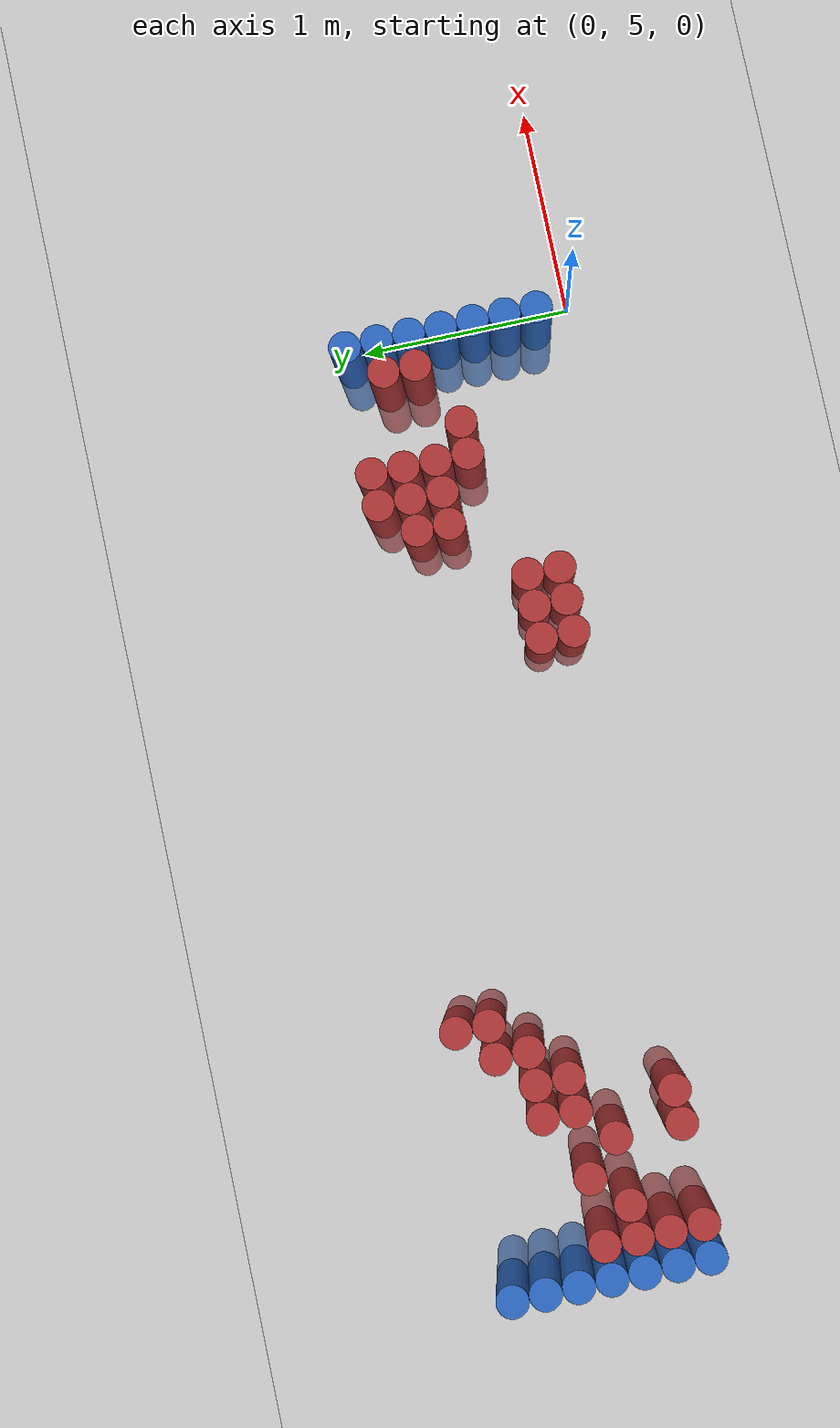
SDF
<sdf version="1.6">
 <world name="default">
  <model name="ground_plane">
   <static>1</static>
   <link name="link">
    <collision name="collision">
     <geometry><plane><normal>0 0 1</normal><size>100 100</size></plane></geometry>
     <surface><friction><ode><mu>100</mu><mu2>50</mu2></ode></friction></surface>
    </collision>
    <visual name="visual">
     <cast_shadows>0</cast_shadows>
     <geometry><plane><normal>0 0 1</normal><size>100 100</size></plane></geometry>
     <material>
      <script><uri>file://media/materials/scripts/gazebo.material</uri><name>Gazebo/Grey</name></script>
     </material>
    </visual>
   </link>
  </model>
  <model name="unit_cylinder_97">
   <static>1</static>
   <pose>-4.425000 5.325000 0.000000 0.000000 0.000000 0.000000</pose>
   <link name="link">
    <inertial>
     <mass>1</mass>
     <inertia><ixx>0.145833</ixx><ixy>0</ixy><ixz>0</ixz><iyy>0.145833</iyy><iyz>0</iyz><izz>0.125</izz></inertia>
    </inertial>
    <collision name="collision">
     <geometry><cylinder><radius>0.075000</radius><length>1</length></cylinder></geometry>
    </collision>
    <visual name="visual">
     <geometry><cylinder><radius>0.075000</radius><length>1</length></cylinder></geometry>
     <material>
      <ambient>0.152000 0.379000 0.720000 1</ambient>
      <diffuse>0.152000 0.379000 0.720000 1</diffuse>
     </material>
     <material>
      <script><name>Gazebo/Grey</name><uri>file://media/materials/scripts/gazebo.material</uri></script>
     </material>
    </visual>
   </link>
  </model>
  <model name="unit_cylinder_98">
   <static>1</static>
   <pose>-4.425000 5.475000 0.000000 0.000000 0.000000 0.000000</pose>
   <link name="link">
    <inertial>
     <mass>1</mass>
     <inertia><ixx>0.145833</ixx><ixy>0</ixy><ixz>0</ixz><iyy>0.145833</iyy><iyz>0</iyz><izz>0.125</izz></inertia>
    </inertial>
    <collision name="collision">
     <geometry><cylinder><radius>0.075000</radius><length>1</length></cylinder></geometry>
    </collision>
    <visual name="visual">
     <geometry><cylinder><radius>0.075000</radius><length>1</length></cylinder></geometry>
     <material>
      <ambient>0.152000 0.379000 0.720000 1</ambient>
      <diffuse>0.152000 0.379000 0.720000 1</diffuse>
     </material>
     <material>
      <script><name>Gazebo/Grey</name><uri>file://media/materials/scripts/gazebo.material</uri></script>
     </material>
    </visual>
   </link>
  </model>
  <model name="unit_cylinder_99">
   <static>1</static>
   <pose>-4.425000 5.625000 0.000000 0.000000 0.000000 0.000000</pose>
   <link name="link">
    <inertial>
     <mass>1</mass>
     <inertia><ixx>0.145833</ixx><ixy>0</ixy><ixz>0</ixz><iyy>0.145833</iyy><iyz>0</iyz><izz>0.125</izz></inertia>
    </inertial>
    <collision name="collision">
     <geometry><cylinder><radius>0.075000</radius><length>1</length></cylinder></geometry>
    </collision>
    <visual name="visual">
     <geometry><cylinder><radius>0.075000</radius><length>1</length></cylinder></geometry>
     <material>
      <ambient>0.152000 0.379000 0.720000 1</ambient>
      <diffuse>0.152000 0.379000 0.720000 1</diffuse>
     </material>
     <material>
      <script><name>Gazebo/Grey</name><uri>file://media/materials/scripts/gazebo.material</uri></script>
     </material>
    </visual>
   </link>
  </model>
  <model name="unit_cylinder_100">
   <static>1</static>
   <pose>-4.425000 5.775000 0.000000 0.000000 0.000000 0.000000</pose>
   <link name="link">
    <inertial>
     <mass>1</mass>
     <inertia><ixx>0.145833</ixx><ixy>0</ixy><ixz>0</ixz><iyy>0.145833</iyy><iyz>0</iyz><izz>0.125</izz></inertia>
    </inertial>
    <collision name="collision">
     <geometry><cylinder><radius>0.075000</radius><length>1</length></cylinder></geometry>
    </collision>
    <visual name="visual">
     <geometry><cylinder><radius>0.075000</radius><length>1</length></cylinder></geometry>
     <material>
      <ambient>0.152000 0.379000 0.720000 1</ambient>
      <diffuse>0.152000 0.379000 0.720000 1</diffuse>
     </material>
     <material>
      <script><name>Gazebo/Grey</name><uri>file://media/materials/scripts/gazebo.material</uri></script>
     </material>
    </visual>
   </link>
  </model>
  <model name="unit_cylinder_101">
   <static>1</static>
   <pose>-4.425000 5.925000 0.000000 0.000000 0.000000 0.000000</pose>
   <link name="link">
    <inertial>
     <mass>1</mass>
     <inertia><ixx>0.145833</ixx><ixy>0</ixy><ixz>0</ixz><iyy>0.145833</iyy><iyz>0</iyz><izz>0.125</izz></inertia>
    </inertial>
    <collision name="collision">
     <geometry><cylinder><radius>0.075000</radius><length>1</length></cylinder></geometry>
    </collision>
    <visual name="visual">
     <geometry><cylinder><radius>0.075000</radius><length>1</length></cylinder></geometry>
     <material>
      <ambient>0.152000 0.379000 0.720000 1</ambient>
      <diffuse>0.152000 0.379000 0.720000 1</diffuse>
     </material>
     <material>
      <script><name>Gazebo/Grey</name><uri>file://media/materials/scripts/gazebo.material</uri></script>
     </material>
    </visual>
   </link>
  </model>
  <model name="unit_cylinder_102">
   <static>1</static>
   <pose>-4.425000 6.075000 0.000000 0.000000 0.000000 0.000000</pose>
   <link name="link">
    <inertial>
     <mass>1</mass>
     <inertia><ixx>0.145833</ixx><ixy>0</ixy><ixz>0</ixz><iyy>0.145833</iyy><iyz>0</iyz><izz>0.125</izz></inertia>
    </inertial>
    <collision name="collision">
     <geometry><cylinder><radius>0.075000</radius><length>1</length></cylinder></geometry>
    </collision>
    <visual name="visual">
     <geometry><cylinder><radius>0.075000</radius><length>1</length></cylinder></geometry>
     <material>
      <ambient>0.152000 0.379000 0.720000 1</ambient>
      <diffuse>0.152000 0.379000 0.720000 1</diffuse>
     </material>
     <material>
      <script><name>Gazebo/Grey</name><uri>file://media/materials/scripts/gazebo.material</uri></script>
     </material>
    </visual>
   </link>
  </model>
  <model name="unit_cylinder_103">
   <static>1</static>
   <pose>-4.425000 6.225000 0.000000 0.000000 0.000000 0.000000</pose>
   <link name="link">
    <inertial>
     <mass>1</mass>
     <inertia><ixx>0.145833</ixx><ixy>0</ixy><ixz>0</ixz><iyy>0.145833</iyy><iyz>0</iyz><izz>0.125</izz></inertia>
    </inertial>
    <collision name="collision">
     <geometry><cylinder><radius>0.075000</radius><length>1</length></cylinder></geometry>
    </collision>
    <visual name="visual">
     <geometry><cylinder><radius>0.075000</radius><length>1</length></cylinder></geometry>
     <material>
      <ambient>0.152000 0.379000 0.720000 1</ambient>
      <diffuse>0.152000 0.379000 0.720000 1</diffuse>
     </material>
     <material>
      <script><name>Gazebo/Grey</name><uri>file://media/materials/scripts/gazebo.material</uri></script>
     </material>
    </visual>
   </link>
  </model>
  <model name="unit_cylinder_126">
   <static>1</static>
   <pose>-4.275000 5.325000 0.000000 0.000000 0.000000 0.000000</pose>
   <link name="link">
    <inertial>
     <mass>1</mass>
     <inertia><ixx>0.145833</ixx><ixy>0</ixy><ixz>0</ixz><iyy>0.145833</iyy><iyz>0</iyz><izz>0.125</izz></inertia>
    </inertial>
    <collision name="collision">
     <geometry><cylinder><radius>0.075000</radius><length>1</length></cylinder></geometry>
    </collision>
    <visual name="visual">
     <geometry><cylinder><radius>0.075000</radius><length>1</length></cylinder></geometry>
     <material>
      <ambient>0.648000 0.192000 0.192000 1</ambient>
      <diffuse>0.648000 0.192000 0.192000 1</diffuse>
     </material>
     <material>
      <script><name>Gazebo/Grey</name><uri>file://media/materials/scripts/gazebo.material</uri></script>
     </material>
    </visual>
   </link>
  </model>
  <model name="unit_cylinder_127">
   <static>1</static>
   <pose>-4.275000 5.475000 0.000000 0.000000 0.000000 0.000000</pose>
   <link name="link">
    <inertial>
     <mass>1</mass>
     <inertia><ixx>0.145833</ixx><ixy>0</ixy><ixz>0</ixz><iyy>0.145833</iyy><iyz>0</iyz><izz>0.125</izz></inertia>
    </inertial>
    <collision name="collision">
     <geometry><cylinder><radius>0.075000</radius><length>1</length></cylinder></geometry>
    </collision>
    <visual name="visual">
     <geometry><cylinder><radius>0.075000</radius><length>1</length></cylinder></geometry>
     <material>
      <ambient>0.648000 0.192000 0.192000 1</ambient>
      <diffuse>0.648000 0.192000 0.192000 1</diffuse>
     </material>
     <material>
      <script><name>Gazebo/Grey</name><uri>file://media/materials/scripts/gazebo.material</uri></script>
     </material>
    </visual>
   </link>
  </model>
  <model name="unit_cylinder_128">
   <static>1</static>
   <pose>-4.275000 5.625000 0.000000 0.000000 0.000000 0.000000</pose>
   <link name="link">
    <inertial>
     <mass>1</mass>
     <inertia><ixx>0.145833</ixx><ixy>0</ixy><ixz>0</ixz><iyy>0.145833</iyy><iyz>0</iyz><izz>0.125</izz></inertia>
    </inertial>
    <collision name="collision">
     <geometry><cylinder><radius>0.075000</radius><length>1</length></cylinder></geometry>
    </collision>
    <visual name="visual">
     <geometry><cylinder><radius>0.075000</radius><length>1</length></cylinder></geometry>
     <material>
      <ambient>0.648000 0.192000 0.192000 1</ambient>
      <diffuse>0.648000 0.192000 0.192000 1</diffuse>
     </material>
     <material>
      <script><name>Gazebo/Grey</name><uri>file://media/materials/scripts/gazebo.material</uri></script>
     </material>
    </visual>
   </link>
  </model>
  <model name="unit_cylinder_129">
   <static>1</static>
   <pose>-4.275000 5.775000 0.000000 0.000000 0.000000 0.000000</pose>
   <link name="link">
    <inertial>
     <mass>1</mass>
     <inertia><ixx>0.145833</ixx><ixy>0</ixy><ixz>0</ixz><iyy>0.145833</iyy><iyz>0</iyz><izz>0.125</izz></inertia>
    </inertial>
    <collision name="collision">
     <geometry><cylinder><radius>0.075000</radius><length>1</length></cylinder></geometry>
    </collision>
    <visual name="visual">
     <geometry><cylinder><radius>0.075000</radius><length>1</length></cylinder></geometry>
     <material>
      <ambient>0.648000 0.192000 0.192000 1</ambient>
      <diffuse>0.648000 0.192000 0.192000 1</diffuse>
     </material>
     <material>
      <script><name>Gazebo/Grey</name><uri>file://media/materials/scripts/gazebo.material</uri></script>
     </material>
    </visual>
   </link>
  </model>
  <model name="unit_cylinder_138">
   <static>1</static>
   <pose>-4.125000 5.625000 0.000000 0.000000 0.000000 0.000000</pose>
   <link name="link">
    <inertial>
     <mass>1</mass>
     <inertia><ixx>0.145833</ixx><ixy>0</ixy><ixz>0</ixz><iyy>0.145833</iyy><iyz>0</iyz><izz>0.125</izz></inertia>
    </inertial>
    <collision name="collision">
     <geometry><cylinder><radius>0.075000</radius><length>1</length></cylinder></geometry>
    </collision>
    <visual name="visual">
     <geometry><cylinder><radius>0.075000</radius><length>1</length></cylinder></geometry>
     <material>
      <ambient>0.648000 0.192000 0.192000 1</ambient>
      <diffuse>0.648000 0.192000 0.192000 1</diffuse>
     </material>
     <material>
      <script><name>Gazebo/Grey</name><uri>file://media/materials/scripts/gazebo.material</uri></script>
     </material>
    </visual>
   </link>
  </model>
  <model name="unit_cylinder_150">
   <static>1</static>
   <pose>-3.975000 5.775000 0.000000 0.000000 0.000000 0.000000</pose>
   <link name="link">
    <inertial>
     <mass>1</mass>
     <inertia><ixx>0.145833</ixx><ixy>0</ixy><ixz>0</ixz><iyy>0.145833</iyy><iyz>0</iyz><izz>0.125</izz></inertia>
    </inertial>
    <collision name="collision">
     <geometry><cylinder><radius>0.075000</radius><length>1</length></cylinder></geometry>
    </collision>
    <visual name="visual">
     <geometry><cylinder><radius>0.075000</radius><length>1</length></cylinder></geometry>
     <material>
      <ambient>0.648000 0.192000 0.192000 1</ambient>
      <diffuse>0.648000 0.192000 0.192000 1</diffuse>
     </material>
     <material>
      <script><name>Gazebo/Grey</name><uri>file://media/materials/scripts/gazebo.material</uri></script>
     </material>
    </visual>
   </link>
  </model>
  <model name="unit_cylinder_164">
   <static>1</static>
   <pose>-3.825000 5.325000 0.000000 0.000000 0.000000 0.000000</pose>
   <link name="link">
    <inertial>
     <mass>1</mass>
     <inertia><ixx>0.145833</ixx><ixy>0</ixy><ixz>0</ixz><iyy>0.145833</iyy><iyz>0</iyz><izz>0.125</izz></inertia>
    </inertial>
    <collision name="collision">
     <geometry><cylinder><radius>0.075000</radius><length>1</length></cylinder></geometry>
    </collision>
    <visual name="visual">
     <geometry><cylinder><radius>0.075000</radius><length>1</length></cylinder></geometry>
     <material>
      <ambient>0.648000 0.192000 0.192000 1</ambient>
      <diffuse>0.648000 0.192000 0.192000 1</diffuse>
     </material>
     <material>
      <script><name>Gazebo/Grey</name><uri>file://media/materials/scripts/gazebo.material</uri></script>
     </material>
    </visual>
   </link>
  </model>
  <model name="unit_cylinder_165">
   <static>1</static>
   <pose>-3.825000 5.625000 0.000000 0.000000 0.000000 0.000000</pose>
   <link name="link">
    <inertial>
     <mass>1</mass>
     <inertia><ixx>0.145833</ixx><ixy>0</ixy><ixz>0</ixz><iyy>0.145833</iyy><iyz>0</iyz><izz>0.125</izz></inertia>
    </inertial>
    <collision name="collision">
     <geometry><cylinder><radius>0.075000</radius><length>1</length></cylinder></geometry>
    </collision>
    <visual name="visual">
     <geometry><cylinder><radius>0.075000</radius><length>1</length></cylinder></geometry>
     <material>
      <ambient>0.648000 0.192000 0.192000 1</ambient>
      <diffuse>0.648000 0.192000 0.192000 1</diffuse>
     </material>
     <material>
      <script><name>Gazebo/Grey</name><uri>file://media/materials/scripts/gazebo.material</uri></script>
     </material>
    </visual>
   </link>
  </model>
  <model name="unit_cylinder_171">
   <static>1</static>
   <pose>-3.675000 5.325000 0.000000 0.000000 0.000000 0.000000</pose>
   <link name="link">
    <inertial>
     <mass>1</mass>
     <inertia><ixx>0.145833</ixx><ixy>0</ixy><ixz>0</ixz><iyy>0.145833</iyy><iyz>0</iyz><izz>0.125</izz></inertia>
    </inertial>
    <collision name="collision">
     <geometry><cylinder><radius>0.075000</radius><length>1</length></cylinder></geometry>
    </collision>
    <visual name="visual">
     <geometry><cylinder><radius>0.075000</radius><length>1</length></cylinder></geometry>
     <material>
      <ambient>0.648000 0.192000 0.192000 1</ambient>
      <diffuse>0.648000 0.192000 0.192000 1</diffuse>
     </material>
     <material>
      <script><name>Gazebo/Grey</name><uri>file://media/materials/scripts/gazebo.material</uri></script>
     </material>
    </visual>
   </link>
  </model>
  <model name="unit_cylinder_172">
   <static>1</static>
   <pose>-3.675000 5.775000 0.000000 0.000000 0.000000 0.000000</pose>
   <link name="link">
    <inertial>
     <mass>1</mass>
     <inertia><ixx>0.145833</ixx><ixy>0</ixy><ixz>0</ixz><iyy>0.145833</iyy><iyz>0</iyz><izz>0.125</izz></inertia>
    </inertial>
    <collision name="collision">
     <geometry><cylinder><radius>0.075000</radius><length>1</length></cylinder></geometry>
    </collision>
    <visual name="visual">
     <geometry><cylinder><radius>0.075000</radius><length>1</length></cylinder></geometry>
     <material>
      <ambient>0.648000 0.192000 0.192000 1</ambient>
      <diffuse>0.648000 0.192000 0.192000 1</diffuse>
     </material>
     <material>
      <script><name>Gazebo/Grey</name><uri>file://media/materials/scripts/gazebo.material</uri></script>
     </material>
    </visual>
   </link>
  </model>
  <model name="unit_cylinder_173">
   <static>1</static>
   <pose>-3.675000 5.925000 0.000000 0.000000 0.000000 0.000000</pose>
   <link name="link">
    <inertial>
     <mass>1</mass>
     <inertia><ixx>0.145833</ixx><ixy>0</ixy><ixz>0</ixz><iyy>0.145833</iyy><iyz>0</iyz><izz>0.125</izz></inertia>
    </inertial>
    <collision name="collision">
     <geometry><cylinder><radius>0.075000</radius><length>1</length></cylinder></geometry>
    </collision>
    <visual name="visual">
     <geometry><cylinder><radius>0.075000</radius><length>1</length></cylinder></geometry>
     <material>
      <ambient>0.648000 0.192000 0.192000 1</ambient>
      <diffuse>0.648000 0.192000 0.192000 1</diffuse>
     </material>
     <material>
      <script><name>Gazebo/Grey</name><uri>file://media/materials/scripts/gazebo.material</uri></script>
     </material>
    </visual>
   </link>
  </model>
  <model name="unit_cylinder_175">
   <static>1</static>
   <pose>-3.525000 5.775000 0.000000 0.000000 0.000000 0.000000</pose>
   <link name="link">
    <inertial>
     <mass>1</mass>
     <inertia><ixx>0.145833</ixx><ixy>0</ixy><ixz>0</ixz><iyy>0.145833</iyy><iyz>0</iyz><izz>0.125</izz></inertia>
    </inertial>
    <collision name="collision">
     <geometry><cylinder><radius>0.075000</radius><length>1</length></cylinder></geometry>
    </collision>
    <visual name="visual">
     <geometry><cylinder><radius>0.075000</radius><length>1</length></cylinder></geometry>
     <material>
      <ambient>0.648000 0.192000 0.192000 1</ambient>
      <diffuse>0.648000 0.192000 0.192000 1</diffuse>
     </material>
     <material>
      <script><name>Gazebo/Grey</name><uri>file://media/materials/scripts/gazebo.material</uri></script>
     </material>
    </visual>
   </link>
  </model>
  <model name="unit_cylinder_176">
   <static>1</static>
   <pose>-3.525000 5.925000 0.000000 0.000000 0.000000 0.000000</pose>
   <link name="link">
    <inertial>
     <mass>1</mass>
     <inertia><ixx>0.145833</ixx><ixy>0</ixy><ixz>0</ixz><iyy>0.145833</iyy><iyz>0</iyz><izz>0.125</izz></inertia>
    </inertial>
    <collision name="collision">
     <geometry><cylinder><radius>0.075000</radius><length>1</length></cylinder></geometry>
    </collision>
    <visual name="visual">
     <geometry><cylinder><radius>0.075000</radius><length>1</length></cylinder></geometry>
     <material>
      <ambient>0.648000 0.192000 0.192000 1</ambient>
      <diffuse>0.648000 0.192000 0.192000 1</diffuse>
     </material>
     <material>
      <script><name>Gazebo/Grey</name><uri>file://media/materials/scripts/gazebo.material</uri></script>
     </material>
    </visual>
   </link>
  </model>
  <model name="unit_cylinder_181">
   <static>1</static>
   <pose>-3.375000 5.925000 0.000000 0.000000 0.000000 0.000000</pose>
   <link name="link">
    <inertial>
     <mass>1</mass>
     <inertia><ixx>0.145833</ixx><ixy>0</ixy><ixz>0</ixz><iyy>0.145833</iyy><iyz>0</iyz><izz>0.125</izz></inertia>
    </inertial>
    <collision name="collision">
     <geometry><cylinder><radius>0.075000</radius><length>1</length></cylinder></geometry>
    </collision>
    <visual name="visual">
     <geometry><cylinder><radius>0.075000</radius><length>1</length></cylinder></geometry>
     <material>
      <ambient>0.648000 0.192000 0.192000 1</ambient>
      <diffuse>0.648000 0.192000 0.192000 1</diffuse>
     </material>
     <material>
      <script><name>Gazebo/Grey</name><uri>file://media/materials/scripts/gazebo.material</uri></script>
     </material>
    </visual>
   </link>
  </model>
  <model name="unit_cylinder_182">
   <static>1</static>
   <pose>-3.375000 6.075000 0.000000 0.000000 0.000000 0.000000</pose>
   <link name="link">
    <inertial>
     <mass>1</mass>
     <inertia><ixx>0.145833</ixx><ixy>0</ixy><ixz>0</ixz><iyy>0.145833</iyy><iyz>0</iyz><izz>0.125</izz></inertia>
    </inertial>
    <collision name="collision">
     <geometry><cylinder><radius>0.075000</radius><length>1</length></cylinder></geometry>
    </collision>
    <visual name="visual">
     <geometry><cylinder><radius>0.075000</radius><length>1</length></cylinder></geometry>
     <material>
      <ambient>0.648000 0.192000 0.192000 1</ambient>
      <diffuse>0.648000 0.192000 0.192000 1</diffuse>
     </material>
     <material>
      <script><name>Gazebo/Grey</name><uri>file://media/materials/scripts/gazebo.material</uri></script>
     </material>
    </visual>
   </link>
  </model>
  <model name="unit_cylinder_188">
   <static>1</static>
   <pose>-3.225000 6.075000 0.000000 0.000000 0.000000 0.000000</pose>
   <link name="link">
    <inertial>
     <mass>1</mass>
     <inertia><ixx>0.145833</ixx><ixy>0</ixy><ixz>0</ixz><iyy>0.145833</iyy><iyz>0</iyz><izz>0.125</izz></inertia>
    </inertial>
    <collision name="collision">
     <geometry><cylinder><radius>0.075000</radius><length>1</length></cylinder></geometry>
    </collision>
    <visual name="visual">
     <geometry><cylinder><radius>0.075000</radius><length>1</length></cylinder></geometry>
     <material>
      <ambient>0.648000 0.192000 0.192000 1</ambient>
      <diffuse>0.648000 0.192000 0.192000 1</diffuse>
     </material>
     <material>
      <script><name>Gazebo/Grey</name><uri>file://media/materials/scripts/gazebo.material</uri></script>
     </material>
    </visual>
   </link>
  </model>
  <model name="unit_cylinder_189">
   <static>1</static>
   <pose>-3.225000 6.225000 0.000000 0.000000 0.000000 0.000000</pose>
   <link name="link">
    <inertial>
     <mass>1</mass>
     <inertia><ixx>0.145833</ixx><ixy>0</ixy><ixz>0</ixz><iyy>0.145833</iyy><iyz>0</iyz><izz>0.125</izz></inertia>
    </inertial>
    <collision name="collision">
     <geometry><cylinder><radius>0.075000</radius><length>1</length></cylinder></geometry>
    </collision>
    <visual name="visual">
     <geometry><cylinder><radius>0.075000</radius><length>1</length></cylinder></geometry>
     <material>
      <ambient>0.648000 0.192000 0.192000 1</ambient>
      <diffuse>0.648000 0.192000 0.192000 1</diffuse>
     </material>
     <material>
      <script><name>Gazebo/Grey</name><uri>file://media/materials/scripts/gazebo.material</uri></script>
     </material>
    </visual>
   </link>
  </model>
  <model name="unit_cylinder_228">
   <static>1</static>
   <pose>-1.575000 5.325000 0.000000 0.000000 0.000000 0.000000</pose>
   <link name="link">
    <inertial>
     <mass>1</mass>
     <inertia><ixx>0.145833</ixx><ixy>0</ixy><ixz>0</ixz><iyy>0.145833</iyy><iyz>0</iyz><izz>0.125</izz></inertia>
    </inertial>
    <collision name="collision">
     <geometry><cylinder><radius>0.075000</radius><length>1</length></cylinder></geometry>
    </collision>
    <visual name="visual">
     <geometry><cylinder><radius>0.075000</radius><length>1</length></cylinder></geometry>
     <material>
      <ambient>0.648000 0.192000 0.192000 1</ambient>
      <diffuse>0.648000 0.192000 0.192000 1</diffuse>
     </material>
     <material>
      <script><name>Gazebo/Grey</name><uri>file://media/materials/scripts/gazebo.material</uri></script>
     </material>
    </visual>
   </link>
  </model>
  <model name="unit_cylinder_229">
   <static>1</static>
   <pose>-1.575000 5.475000 0.000000 0.000000 0.000000 0.000000</pose>
   <link name="link">
    <inertial>
     <mass>1</mass>
     <inertia><ixx>0.145833</ixx><ixy>0</ixy><ixz>0</ixz><iyy>0.145833</iyy><iyz>0</iyz><izz>0.125</izz></inertia>
    </inertial>
    <collision name="collision">
     <geometry><cylinder><radius>0.075000</radius><length>1</length></cylinder></geometry>
    </collision>
    <visual name="visual">
     <geometry><cylinder><radius>0.075000</radius><length>1</length></cylinder></geometry>
     <material>
      <ambient>0.648000 0.192000 0.192000 1</ambient>
      <diffuse>0.648000 0.192000 0.192000 1</diffuse>
     </material>
     <material>
      <script><name>Gazebo/Grey</name><uri>file://media/materials/scripts/gazebo.material</uri></script>
     </material>
    </visual>
   </link>
  </model>
  <model name="unit_cylinder_234">
   <static>1</static>
   <pose>-1.425000 5.325000 0.000000 0.000000 0.000000 0.000000</pose>
   <link name="link">
    <inertial>
     <mass>1</mass>
     <inertia><ixx>0.145833</ixx><ixy>0</ixy><ixz>0</ixz><iyy>0.145833</iyy><iyz>0</iyz><izz>0.125</izz></inertia>
    </inertial>
    <collision name="collision">
     <geometry><cylinder><radius>0.075000</radius><length>1</length></cylinder></geometry>
    </collision>
    <visual name="visual">
     <geometry><cylinder><radius>0.075000</radius><length>1</length></cylinder></geometry>
     <material>
      <ambient>0.648000 0.192000 0.192000 1</ambient>
      <diffuse>0.648000 0.192000 0.192000 1</diffuse>
     </material>
     <material>
      <script><name>Gazebo/Grey</name><uri>file://media/materials/scripts/gazebo.material</uri></script>
     </material>
    </visual>
   </link>
  </model>
  <model name="unit_cylinder_235">
   <static>1</static>
   <pose>-1.425000 5.475000 0.000000 0.000000 0.000000 0.000000</pose>
   <link name="link">
    <inertial>
     <mass>1</mass>
     <inertia><ixx>0.145833</ixx><ixy>0</ixy><ixz>0</ixz><iyy>0.145833</iyy><iyz>0</iyz><izz>0.125</izz></inertia>
    </inertial>
    <collision name="collision">
     <geometry><cylinder><radius>0.075000</radius><length>1</length></cylinder></geometry>
    </collision>
    <visual name="visual">
     <geometry><cylinder><radius>0.075000</radius><length>1</length></cylinder></geometry>
     <material>
      <ambient>0.648000 0.192000 0.192000 1</ambient>
      <diffuse>0.648000 0.192000 0.192000 1</diffuse>
     </material>
     <material>
      <script><name>Gazebo/Grey</name><uri>file://media/materials/scripts/gazebo.material</uri></script>
     </material>
    </visual>
   </link>
  </model>
  <model name="unit_cylinder_244">
   <static>1</static>
   <pose>-1.275000 5.325000 0.000000 0.000000 0.000000 0.000000</pose>
   <link name="link">
    <inertial>
     <mass>1</mass>
     <inertia><ixx>0.145833</ixx><ixy>0</ixy><ixz>0</ixz><iyy>0.145833</iyy><iyz>0</iyz><izz>0.125</izz></inertia>
    </inertial>
    <collision name="collision">
     <geometry><cylinder><radius>0.075000</radius><length>1</length></cylinder></geometry>
    </collision>
    <visual name="visual">
     <geometry><cylinder><radius>0.075000</radius><length>1</length></cylinder></geometry>
     <material>
      <ambient>0.648000 0.192000 0.192000 1</ambient>
      <diffuse>0.648000 0.192000 0.192000 1</diffuse>
     </material>
     <material>
      <script><name>Gazebo/Grey</name><uri>file://media/materials/scripts/gazebo.material</uri></script>
     </material>
    </visual>
   </link>
  </model>
  <model name="unit_cylinder_245">
   <static>1</static>
   <pose>-1.275000 5.475000 0.000000 0.000000 0.000000 0.000000</pose>
   <link name="link">
    <inertial>
     <mass>1</mass>
     <inertia><ixx>0.145833</ixx><ixy>0</ixy><ixz>0</ixz><iyy>0.145833</iyy><iyz>0</iyz><izz>0.125</izz></inertia>
    </inertial>
    <collision name="collision">
     <geometry><cylinder><radius>0.075000</radius><length>1</length></cylinder></geometry>
    </collision>
    <visual name="visual">
     <geometry><cylinder><radius>0.075000</radius><length>1</length></cylinder></geometry>
     <material>
      <ambient>0.648000 0.192000 0.192000 1</ambient>
      <diffuse>0.648000 0.192000 0.192000 1</diffuse>
     </material>
     <material>
      <script><name>Gazebo/Grey</name><uri>file://media/materials/scripts/gazebo.material</uri></script>
     </material>
    </visual>
   </link>
  </model>
  <model name="unit_cylinder_256">
   <static>1</static>
   <pose>-0.975000 5.775000 0.000000 0.000000 0.000000 0.000000</pose>
   <link name="link">
    <inertial>
     <mass>1</mass>
     <inertia><ixx>0.145833</ixx><ixy>0</ixy><ixz>0</ixz><iyy>0.145833</iyy><iyz>0</iyz><izz>0.125</izz></inertia>
    </inertial>
    <collision name="collision">
     <geometry><cylinder><radius>0.075000</radius><length>1</length></cylinder></geometry>
    </collision>
    <visual name="visual">
     <geometry><cylinder><radius>0.075000</radius><length>1</length></cylinder></geometry>
     <material>
      <ambient>0.648000 0.192000 0.192000 1</ambient>
      <diffuse>0.648000 0.192000 0.192000 1</diffuse>
     </material>
     <material>
      <script><name>Gazebo/Grey</name><uri>file://media/materials/scripts/gazebo.material</uri></script>
     </material>
    </visual>
   </link>
  </model>
  <model name="unit_cylinder_257">
   <static>1</static>
   <pose>-0.975000 5.925000 0.000000 0.000000 0.000000 0.000000</pose>
   <link name="link">
    <inertial>
     <mass>1</mass>
     <inertia><ixx>0.145833</ixx><ixy>0</ixy><ixz>0</ixz><iyy>0.145833</iyy><iyz>0</iyz><izz>0.125</izz></inertia>
    </inertial>
    <collision name="collision">
     <geometry><cylinder><radius>0.075000</radius><length>1</length></cylinder></geometry>
    </collision>
    <visual name="visual">
     <geometry><cylinder><radius>0.075000</radius><length>1</length></cylinder></geometry>
     <material>
      <ambient>0.648000 0.192000 0.192000 1</ambient>
      <diffuse>0.648000 0.192000 0.192000 1</diffuse>
     </material>
     <material>
      <script><name>Gazebo/Grey</name><uri>file://media/materials/scripts/gazebo.material</uri></script>
     </material>
    </visual>
   </link>
  </model>
  <model name="unit_cylinder_266">
   <static>1</static>
   <pose>-0.825000 5.775000 0.000000 0.000000 0.000000 0.000000</pose>
   <link name="link">
    <inertial>
     <mass>1</mass>
     <inertia><ixx>0.145833</ixx><ixy>0</ixy><ixz>0</ixz><iyy>0.145833</iyy><iyz>0</iyz><izz>0.125</izz></inertia>
    </inertial>
    <collision name="collision">
     <geometry><cylinder><radius>0.075000</radius><length>1</length></cylinder></geometry>
    </collision>
    <visual name="visual">
     <geometry><cylinder><radius>0.075000</radius><length>1</length></cylinder></geometry>
     <material>
      <ambient>0.648000 0.192000 0.192000 1</ambient>
      <diffuse>0.648000 0.192000 0.192000 1</diffuse>
     </material>
     <material>
      <script><name>Gazebo/Grey</name><uri>file://media/materials/scripts/gazebo.material</uri></script>
     </material>
    </visual>
   </link>
  </model>
  <model name="unit_cylinder_267">
   <static>1</static>
   <pose>-0.825000 5.925000 0.000000 0.000000 0.000000 0.000000</pose>
   <link name="link">
    <inertial>
     <mass>1</mass>
     <inertia><ixx>0.145833</ixx><ixy>0</ixy><ixz>0</ixz><iyy>0.145833</iyy><iyz>0</iyz><izz>0.125</izz></inertia>
    </inertial>
    <collision name="collision">
     <geometry><cylinder><radius>0.075000</radius><length>1</length></cylinder></geometry>
    </collision>
    <visual name="visual">
     <geometry><cylinder><radius>0.075000</radius><length>1</length></cylinder></geometry>
     <material>
      <ambient>0.648000 0.192000 0.192000 1</ambient>
      <diffuse>0.648000 0.192000 0.192000 1</diffuse>
     </material>
     <material>
      <script><name>Gazebo/Grey</name><uri>file://media/materials/scripts/gazebo.material</uri></script>
     </material>
    </visual>
   </link>
  </model>
  <model name="unit_cylinder_268">
   <static>1</static>
   <pose>-0.825000 6.075000 0.000000 0.000000 0.000000 0.000000</pose>
   <link name="link">
    <inertial>
     <mass>1</mass>
     <inertia><ixx>0.145833</ixx><ixy>0</ixy><ixz>0</ixz><iyy>0.145833</iyy><iyz>0</iyz><izz>0.125</izz></inertia>
    </inertial>
    <collision name="collision">
     <geometry><cylinder><radius>0.075000</radius><length>1</length></cylinder></geometry>
    </collision>
    <visual name="visual">
     <geometry><cylinder><radius>0.075000</radius><length>1</length></cylinder></geometry>
     <material>
      <ambient>0.648000 0.192000 0.192000 1</ambient>
      <diffuse>0.648000 0.192000 0.192000 1</diffuse>
     </material>
     <material>
      <script><name>Gazebo/Grey</name><uri>file://media/materials/scripts/gazebo.material</uri></script>
     </material>
    </visual>
   </link>
  </model>
  <model name="unit_cylinder_278">
   <static>1</static>
   <pose>-0.675000 5.625000 0.000000 0.000000 0.000000 0.000000</pose>
   <link name="link">
    <inertial>
     <mass>1</mass>
     <inertia><ixx>0.145833</ixx><ixy>0</ixy><ixz>0</ixz><iyy>0.145833</iyy><iyz>0</iyz><izz>0.125</izz></inertia>
    </inertial>
    <collision name="collision">
     <geometry><cylinder><radius>0.075000</radius><length>1</length></cylinder></geometry>
    </collision>
    <visual name="visual">
     <geometry><cylinder><radius>0.075000</radius><length>1</length></cylinder></geometry>
     <material>
      <ambient>0.648000 0.192000 0.192000 1</ambient>
      <diffuse>0.648000 0.192000 0.192000 1</diffuse>
     </material>
     <material>
      <script><name>Gazebo/Grey</name><uri>file://media/materials/scripts/gazebo.material</uri></script>
     </material>
    </visual>
   </link>
  </model>
  <model name="unit_cylinder_279">
   <static>1</static>
   <pose>-0.675000 5.775000 0.000000 0.000000 0.000000 0.000000</pose>
   <link name="link">
    <inertial>
     <mass>1</mass>
     <inertia><ixx>0.145833</ixx><ixy>0</ixy><ixz>0</ixz><iyy>0.145833</iyy><iyz>0</iyz><izz>0.125</izz></inertia>
    </inertial>
    <collision name="collision">
     <geometry><cylinder><radius>0.075000</radius><length>1</length></cylinder></geometry>
    </collision>
    <visual name="visual">
     <geometry><cylinder><radius>0.075000</radius><length>1</length></cylinder></geometry>
     <material>
      <ambient>0.648000 0.192000 0.192000 1</ambient>
      <diffuse>0.648000 0.192000 0.192000 1</diffuse>
     </material>
     <material>
      <script><name>Gazebo/Grey</name><uri>file://media/materials/scripts/gazebo.material</uri></script>
     </material>
    </visual>
   </link>
  </model>
  <model name="unit_cylinder_280">
   <static>1</static>
   <pose>-0.675000 5.925000 0.000000 0.000000 0.000000 0.000000</pose>
   <link name="link">
    <inertial>
     <mass>1</mass>
     <inertia><ixx>0.145833</ixx><ixy>0</ixy><ixz>0</ixz><iyy>0.145833</iyy><iyz>0</iyz><izz>0.125</izz></inertia>
    </inertial>
    <collision name="collision">
     <geometry><cylinder><radius>0.075000</radius><length>1</length></cylinder></geometry>
    </collision>
    <visual name="visual">
     <geometry><cylinder><radius>0.075000</radius><length>1</length></cylinder></geometry>
     <material>
      <ambient>0.648000 0.192000 0.192000 1</ambient>
      <diffuse>0.648000 0.192000 0.192000 1</diffuse>
     </material>
     <material>
      <script><name>Gazebo/Grey</name><uri>file://media/materials/scripts/gazebo.material</uri></script>
     </material>
    </visual>
   </link>
  </model>
  <model name="unit_cylinder_281">
   <static>1</static>
   <pose>-0.675000 6.075000 0.000000 0.000000 0.000000 0.000000</pose>
   <link name="link">
    <inertial>
     <mass>1</mass>
     <inertia><ixx>0.145833</ixx><ixy>0</ixy><ixz>0</ixz><iyy>0.145833</iyy><iyz>0</iyz><izz>0.125</izz></inertia>
    </inertial>
    <collision name="collision">
     <geometry><cylinder><radius>0.075000</radius><length>1</length></cylinder></geometry>
    </collision>
    <visual name="visual">
     <geometry><cylinder><radius>0.075000</radius><length>1</length></cylinder></geometry>
     <material>
      <ambient>0.648000 0.192000 0.192000 1</ambient>
      <diffuse>0.648000 0.192000 0.192000 1</diffuse>
     </material>
     <material>
      <script><name>Gazebo/Grey</name><uri>file://media/materials/scripts/gazebo.material</uri></script>
     </material>
    </visual>
   </link>
  </model>
  <model name="unit_cylinder_290">
   <static>1</static>
   <pose>-0.525000 5.625000 0.000000 0.000000 0.000000 0.000000</pose>
   <link name="link">
    <inertial>
     <mass>1</mass>
     <inertia><ixx>0.145833</ixx><ixy>0</ixy><ixz>0</ixz><iyy>0.145833</iyy><iyz>0</iyz><izz>0.125</izz></inertia>
    </inertial>
    <collision name="collision">
     <geometry><cylinder><radius>0.075000</radius><length>1</length></cylinder></geometry>
    </collision>
    <visual name="visual">
     <geometry><cylinder><radius>0.075000</radius><length>1</length></cylinder></geometry>
     <material>
      <ambient>0.648000 0.192000 0.192000 1</ambient>
      <diffuse>0.648000 0.192000 0.192000 1</diffuse>
     </material>
     <material>
      <script><name>Gazebo/Grey</name><uri>file://media/materials/scripts/gazebo.material</uri></script>
     </material>
    </visual>
   </link>
  </model>
  <model name="unit_cylinder_303">
   <static>1</static>
   <pose>-0.225000 5.775000 0.000000 0.000000 0.000000 0.000000</pose>
   <link name="link">
    <inertial>
     <mass>1</mass>
     <inertia><ixx>0.145833</ixx><ixy>0</ixy><ixz>0</ixz><iyy>0.145833</iyy><iyz>0</iyz><izz>0.125</izz></inertia>
    </inertial>
    <collision name="collision">
     <geometry><cylinder><radius>0.075000</radius><length>1</length></cylinder></geometry>
    </collision>
    <visual name="visual">
     <geometry><cylinder><radius>0.075000</radius><length>1</length></cylinder></geometry>
     <material>
      <ambient>0.648000 0.192000 0.192000 1</ambient>
      <diffuse>0.648000 0.192000 0.192000 1</diffuse>
     </material>
     <material>
      <script><name>Gazebo/Grey</name><uri>file://media/materials/scripts/gazebo.material</uri></script>
     </material>
    </visual>
   </link>
  </model>
  <model name="unit_cylinder_304">
   <static>1</static>
   <pose>-0.225000 5.925000 0.000000 0.000000 0.000000 0.000000</pose>
   <link name="link">
    <inertial>
     <mass>1</mass>
     <inertia><ixx>0.145833</ixx><ixy>0</ixy><ixz>0</ixz><iyy>0.145833</iyy><iyz>0</iyz><izz>0.125</izz></inertia>
    </inertial>
    <collision name="collision">
     <geometry><cylinder><radius>0.075000</radius><length>1</length></cylinder></geometry>
    </collision>
    <visual name="visual">
     <geometry><cylinder><radius>0.075000</radius><length>1</length></cylinder></geometry>
     <material>
      <ambient>0.648000 0.192000 0.192000 1</ambient>
      <diffuse>0.648000 0.192000 0.192000 1</diffuse>
     </material>
     <material>
      <script><name>Gazebo/Grey</name><uri>file://media/materials/scripts/gazebo.material</uri></script>
     </material>
    </visual>
   </link>
  </model>
  <model name="unit_cylinder_317">
   <static>1</static>
   <pose>-0.075000 5.175000 0.000000 0.000000 0.000000 0.000000</pose>
   <link name="link">
    <inertial>
     <mass>1</mass>
     <inertia><ixx>0.145833</ixx><ixy>0</ixy><ixz>0</ixz><iyy>0.145833</iyy><iyz>0</iyz><izz>0.125</izz></inertia>
    </inertial>
    <collision name="collision">
     <geometry><cylinder><radius>0.075000</radius><length>1</length></cylinder></geometry>
    </collision>
    <visual name="visual">
     <geometry><cylinder><radius>0.075000</radius><length>1</length></cylinder></geometry>
     <material>
      <ambient>0.152000 0.379000 0.720000 1</ambient>
      <diffuse>0.152000 0.379000 0.720000 1</diffuse>
     </material>
     <material>
      <script><name>Gazebo/Grey</name><uri>file://media/materials/scripts/gazebo.material</uri></script>
     </material>
    </visual>
   </link>
  </model>
  <model name="unit_cylinder_318">
   <static>1</static>
   <pose>-0.075000 5.325000 0.000000 0.000000 0.000000 0.000000</pose>
   <link name="link">
    <inertial>
     <mass>1</mass>
     <inertia><ixx>0.145833</ixx><ixy>0</ixy><ixz>0</ixz><iyy>0.145833</iyy><iyz>0</iyz><izz>0.125</izz></inertia>
    </inertial>
    <collision name="collision">
     <geometry><cylinder><radius>0.075000</radius><length>1</length></cylinder></geometry>
    </collision>
    <visual name="visual">
     <geometry><cylinder><radius>0.075000</radius><length>1</length></cylinder></geometry>
     <material>
      <ambient>0.152000 0.379000 0.720000 1</ambient>
      <diffuse>0.152000 0.379000 0.720000 1</diffuse>
     </material>
     <material>
      <script><name>Gazebo/Grey</name><uri>file://media/materials/scripts/gazebo.material</uri></script>
     </material>
    </visual>
   </link>
  </model>
  <model name="unit_cylinder_319">
   <static>1</static>
   <pose>-0.075000 5.475000 0.000000 0.000000 0.000000 0.000000</pose>
   <link name="link">
    <inertial>
     <mass>1</mass>
     <inertia><ixx>0.145833</ixx><ixy>0</ixy><ixz>0</ixz><iyy>0.145833</iyy><iyz>0</iyz><izz>0.125</izz></inertia>
    </inertial>
    <collision name="collision">
     <geometry><cylinder><radius>0.075000</radius><length>1</length></cylinder></geometry>
    </collision>
    <visual name="visual">
     <geometry><cylinder><radius>0.075000</radius><length>1</length></cylinder></geometry>
     <material>
      <ambient>0.152000 0.379000 0.720000 1</ambient>
      <diffuse>0.152000 0.379000 0.720000 1</diffuse>
     </material>
     <material>
      <script><name>Gazebo/Grey</name><uri>file://media/materials/scripts/gazebo.material</uri></script>
     </material>
    </visual>
   </link>
  </model>
  <model name="unit_cylinder_320">
   <static>1</static>
   <pose>-0.075000 5.625000 0.000000 0.000000 0.000000 0.000000</pose>
   <link name="link">
    <inertial>
     <mass>1</mass>
     <inertia><ixx>0.145833</ixx><ixy>0</ixy><ixz>0</ixz><iyy>0.145833</iyy><iyz>0</iyz><izz>0.125</izz></inertia>
    </inertial>
    <collision name="collision">
     <geometry><cylinder><radius>0.075000</radius><length>1</length></cylinder></geometry>
    </collision>
    <visual name="visual">
     <geometry><cylinder><radius>0.075000</radius><length>1</length></cylinder></geometry>
     <material>
      <ambient>0.152000 0.379000 0.720000 1</ambient>
      <diffuse>0.152000 0.379000 0.720000 1</diffuse>
     </material>
     <material>
      <script><name>Gazebo/Grey</name><uri>file://media/materials/scripts/gazebo.material</uri></script>
     </material>
    </visual>
   </link>
  </model>
  <model name="unit_cylinder_321">
   <static>1</static>
   <pose>-0.075000 5.775000 0.000000 0.000000 0.000000 0.000000</pose>
   <link name="link">
    <inertial>
     <mass>1</mass>
     <inertia><ixx>0.145833</ixx><ixy>0</ixy><ixz>0</ixz><iyy>0.145833</iyy><iyz>0</iyz><izz>0.125</izz></inertia>
    </inertial>
    <collision name="collision">
     <geometry><cylinder><radius>0.075000</radius><length>1</length></cylinder></geometry>
    </collision>
    <visual name="visual">
     <geometry><cylinder><radius>0.075000</radius><length>1</length></cylinder></geometry>
     <material>
      <ambient>0.152000 0.379000 0.720000 1</ambient>
      <diffuse>0.152000 0.379000 0.720000 1</diffuse>
     </material>
     <material>
      <script><name>Gazebo/Grey</name><uri>file://media/materials/scripts/gazebo.material</uri></script>
     </material>
    </visual>
   </link>
  </model>
  <model name="unit_cylinder_322">
   <static>1</static>
   <pose>-0.075000 5.925000 0.000000 0.000000 0.000000 0.000000</pose>
   <link name="link">
    <inertial>
     <mass>1</mass>
     <inertia><ixx>0.145833</ixx><ixy>0</ixy><ixz>0</ixz><iyy>0.145833</iyy><iyz>0</iyz><izz>0.125</izz></inertia>
    </inertial>
    <collision name="collision">
     <geometry><cylinder><radius>0.075000</radius><length>1</length></cylinder></geometry>
    </collision>
    <visual name="visual">
     <geometry><cylinder><radius>0.075000</radius><length>1</length></cylinder></geometry>
     <material>
      <ambient>0.152000 0.379000 0.720000 1</ambient>
      <diffuse>0.152000 0.379000 0.720000 1</diffuse>
     </material>
     <material>
      <script><name>Gazebo/Grey</name><uri>file://media/materials/scripts/gazebo.material</uri></script>
     </material>
    </visual>
   </link>
  </model>
  <model name="unit_cylinder_323">
   <static>1</static>
   <pose>-0.075000 6.075000 0.000000 0.000000 0.000000 0.000000</pose>
   <link name="link">
    <inertial>
     <mass>1</mass>
     <inertia><ixx>0.145833</ixx><ixy>0</ixy><ixz>0</ixz><iyy>0.145833</iyy><iyz>0</iyz><izz>0.125</izz></inertia>
    </inertial>
    <collision name="collision">
     <geometry><cylinder><radius>0.075000</radius><length>1</length></cylinder></geometry>
    </collision>
    <visual name="visual">
     <geometry><cylinder><radius>0.075000</radius><length>1</length></cylinder></geometry>
     <material>
      <ambient>0.152000 0.379000 0.720000 1</ambient>
      <diffuse>0.152000 0.379000 0.720000 1</diffuse>
     </material>
     <material>
      <script><name>Gazebo/Grey</name><uri>file://media/materials/scripts/gazebo.material</uri></script>
     </material>
    </visual>
   </link>
  </model>
 </world>
</sdf>
